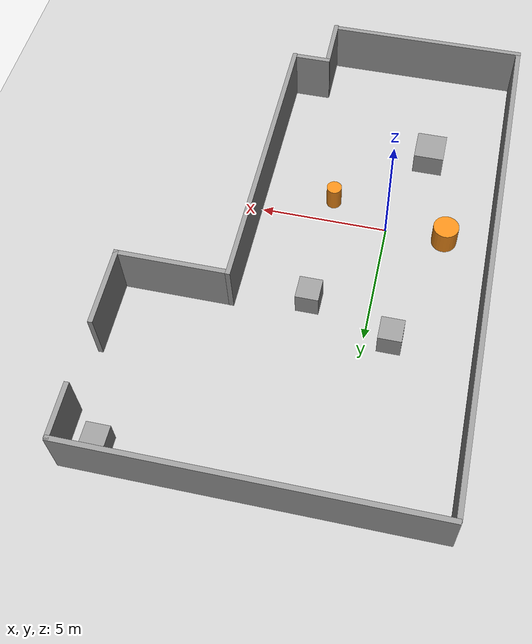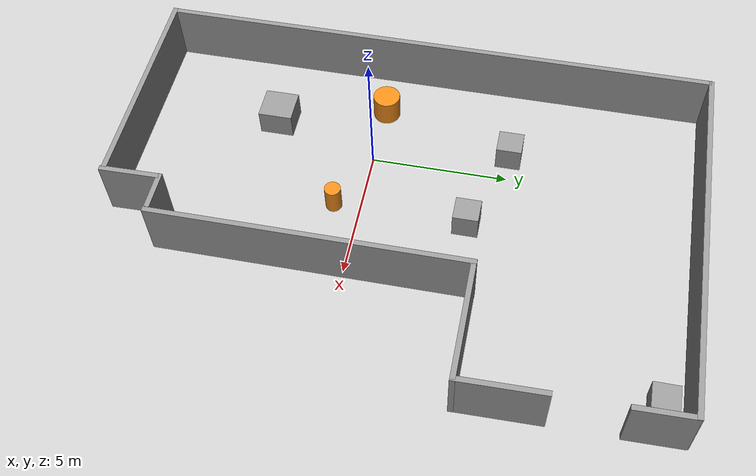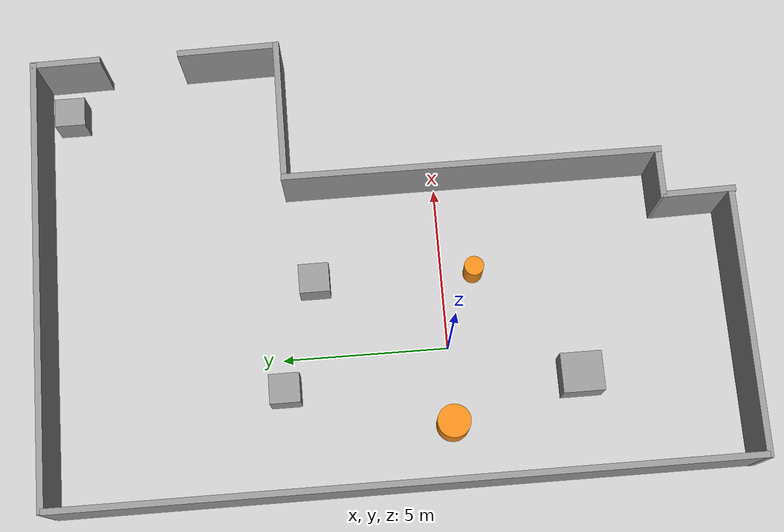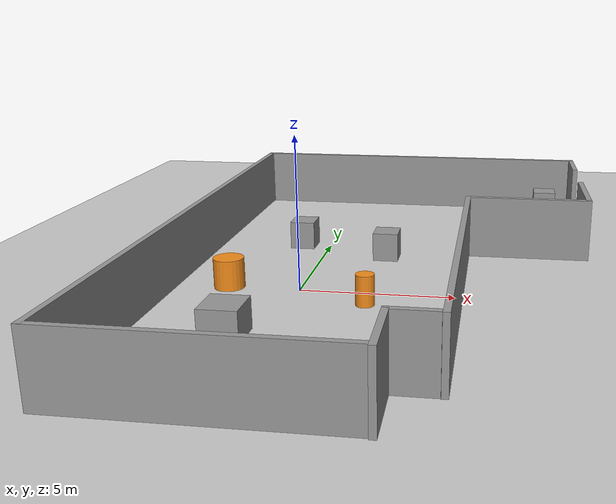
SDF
<sdf version="1.7">
 <world name="default">
  <light name="sun" type="directional">
   <pose>0 0 10 0 -0 0</pose>
   <diffuse>0.8 0.8 0.8 1</diffuse>
   <specular>0.2 0.2 0.2 1</specular>
   <attenuation>
    <range>1000</range>
    <constant>0.9</constant>
    <linear>0.01</linear>
    <quadratic>0.001</quadratic>
   </attenuation>
   <direction>-0.5 0.1 -0.9</direction>
   <spot><inner_angle>0</inner_angle><outer_angle>0</outer_angle><falloff>0</falloff></spot>
  </light>
  <model name="ground_plane">
   <static>1</static>
   <link name="link">
    <collision name="collision">
     <geometry><plane><normal>0 0 1</normal><size>100 100</size></plane></geometry>
     <surface>
      <contact><collide_bitmask>65535</collide_bitmask></contact>
      <friction><ode><mu>100</mu><mu2>50</mu2></ode></friction>
     </surface>
    </collision>
    <visual name="visual">
     <cast_shadows>0</cast_shadows>
     <geometry><plane><normal>0 0 1</normal><size>100 100</size></plane></geometry>
     <material>
      <script><uri>file://media/materials/scripts/gazebo.material</uri><name>Gazebo/Grey</name></script>
     </material>
    </visual>
   </link>
  </model>
  <gravity>0 0 -9.8</gravity>
  <magnetic_field>6e-06 2.3e-05 -4.2e-05</magnetic_field>
  <atmosphere type="adiabatic"/>
  <physics type="ode">
   <max_step_size>0.001</max_step_size>
   <real_time_factor>1</real_time_factor>
   <real_time_update_rate>1000</real_time_update_rate>
  </physics>
  <scene><ambient>0.4 0.4 0.4 1</ambient><background>0.7 0.7 0.7 1</background><shadows>1</shadows></scene>
  <spherical_coordinates>
   <surface_model>EARTH_WGS84</surface_model>
   <latitude_deg>0</latitude_deg>
   <longitude_deg>0</longitude_deg>
   <elevation>0</elevation>
   <heading_deg>0</heading_deg>
  </spherical_coordinates>
  <model name="unit_box">
   <pose>2.29297 3.8756 0.5 0 -0 0</pose>
   <link name="link">
    <inertial>
     <mass>1</mass>
     <inertia>
      <ixx>0.166667</ixx>
      <ixy>0</ixy>
      <ixz>0</ixz>
      <iyy>0.166667</iyy>
      <iyz>0</iyz>
      <izz>0.166667</izz>
     </inertia>
    </inertial>
    <collision name="collision"><geometry><box><size>0.887751 0.920009 1</size></box></geometry></collision>
    <visual name="visual">
     <geometry><box><size>0.887751 0.920009 1</size></box></geometry>
     <material>
      <script><name>Gazebo/Grey</name><uri>file://media/materials/scripts/gazebo.material</uri></script>
     </material>
    </visual>
    <gravity>0</gravity>
    <is_static>1</is_static>
   </link>
   <static>1</static>
  </model>
  <model name="unit_box_clone">
   <pose>-4.13734 1.56638 1.1 0 -0 0</pose>
   <link name="link">
    <inertial>
     <mass>1</mass>
     <inertia>
      <ixx>0.166667</ixx>
      <ixy>0</ixy>
      <ixz>0</ixz>
      <iyy>0.166667</iyy>
      <iyz>0</iyz>
      <izz>0.166667</izz>
     </inertia>
    </inertial>
    <collision name="collision"><geometry><box><size>0.187736 20.6459 2.19069</size></box></geometry></collision>
    <visual name="visual">
     <geometry><box><size>0.187736 20.6459 2.19069</size></box></geometry>
     <material>
      <script><name>Gazebo/Grey</name><uri>file://media/materials/scripts/gazebo.material</uri></script>
     </material>
    </visual>
    <gravity>0</gravity>
    <is_static>1</is_static>
   </link>
   <static>1</static>
  </model>
  <model name="unit_box_clone_0">
   <pose>-0.277493 -8.67132 1.1 0 0 -1.5708</pose>
   <link name="link">
    <inertial>
     <mass>1</mass>
     <inertia>
      <ixx>0.166667</ixx>
      <ixy>0</ixy>
      <ixz>0</ixz>
      <iyy>0.166667</iyy>
      <iyz>0</iyz>
      <izz>0.166667</izz>
     </inertia>
    </inertial>
    <collision name="collision"><geometry><box><size>0.187736 7.92131 2.19069</size></box></geometry></collision>
    <visual name="visual">
     <geometry><box><size>0.187736 7.92131 2.19069</size></box></geometry>
     <material>
      <script><name>Gazebo/Grey</name><uri>file://media/materials/scripts/gazebo.material</uri></script>
     </material>
    </visual>
    <gravity>0</gravity>
    <is_static>1</is_static>
   </link>
   <static>1</static>
  </model>
  <model name="unit_box_clone_1">
   <pose>5.13948 -1.08108 1.1 0.00012 -0 0</pose>
   <link name="link">
    <inertial>
     <mass>1</mass>
     <inertia>
      <ixx>0.166667</ixx>
      <ixy>0</ixy>
      <ixz>0</ixz>
      <iyy>0.166667</iyy>
      <iyz>0</iyz>
      <izz>0.166667</izz>
     </inertia>
    </inertial>
    <collision name="collision"><geometry><box><size>0.187736 11.3827 2.19069</size></box></geometry></collision>
    <visual name="visual">
     <geometry><box><size>0.187736 11.3827 2.19069</size></box></geometry>
     <material>
      <script><name>Gazebo/Grey</name><uri>file://media/materials/scripts/gazebo.material</uri></script>
     </material>
    </visual>
    <gravity>0</gravity>
    <is_static>1</is_static>
   </link>
   <static>1</static>
  </model>
  <model name="unit_box_clone_0_clone">
   <pose>4.33288 -6.65788 1.1 0 -0 1.5707</pose>
   <link name="link">
    <inertial>
     <mass>1</mass>
     <inertia>
      <ixx>0.166667</ixx>
      <ixy>0</ixy>
      <ixz>0</ixz>
      <iyy>0.166667</iyy>
      <iyz>0</iyz>
      <izz>0.166667</izz>
     </inertia>
    </inertial>
    <collision name="collision"><geometry><box><size>0.187736 1.41751 2.19069</size></box></geometry></collision>
    <visual name="visual">
     <geometry><box><size>0.187736 1.41751 2.19069</size></box></geometry>
     <material>
      <script><name>Gazebo/Grey</name><uri>file://media/materials/scripts/gazebo.material</uri></script>
     </material>
    </visual>
    <gravity>0</gravity>
    <is_static>1</is_static>
   </link>
   <static>1</static>
  </model>
  <model name="unit_box_clone_0_clone_clone">
   <pose>2.57167 11.8862 1.1 0 0 -1.5707</pose>
   <link name="link">
    <inertial>
     <mass>1</mass>
     <inertia>
      <ixx>0.166667</ixx>
      <ixy>0</ixy>
      <ixz>0</ixz>
      <iyy>0.166667</iyy>
      <iyz>0</iyz>
      <izz>0.166667</izz>
     </inertia>
    </inertial>
    <collision name="collision"><geometry><box><size>0.187736 13.5655 2.19069</size></box></geometry></collision>
    <visual name="visual">
     <geometry><box><size>0.187736 13.5655 2.19069</size></box></geometry>
     <material>
      <script><name>Gazebo/Grey</name><uri>file://media/materials/scripts/gazebo.material</uri></script>
     </material>
    </visual>
    <gravity>0</gravity>
    <is_static>1</is_static>
   </link>
   <static>1</static>
  </model>
  <model name="unit_box_clone_0_clone_clone_0">
   <pose>7.26676 4.51308 1.1 0 0 -1.57071</pose>
   <link name="link">
    <inertial>
     <mass>1</mass>
     <inertia>
      <ixx>0.166667</ixx>
      <ixy>0</ixy>
      <ixz>0</ixz>
      <iyy>0.166667</iyy>
      <iyz>0</iyz>
      <izz>0.166667</izz>
     </inertia>
    </inertial>
    <collision name="collision"><geometry><box><size>0.187736 4.40981 2.19069</size></box></geometry></collision>
    <visual name="visual">
     <geometry><box><size>0.187736 4.40981 2.19069</size></box></geometry>
     <material>
      <script><name>Gazebo/Grey</name><uri>file://media/materials/scripts/gazebo.material</uri></script>
     </material>
    </visual>
    <gravity>0</gravity>
    <static>1</static>
   </link>
   <static>1</static>
  </model>
  <model name="unit_box_clone_0_clone_clone_1">
   <pose>3.73213 -7.72846 1.1 0 0 -3.12525</pose>
   <link name="link">
    <inertial>
     <mass>1</mass>
     <inertia>
      <ixx>0.166667</ixx>
      <ixy>0</ixy>
      <ixz>0</ixz>
      <iyy>0.166667</iyy>
      <iyz>0</iyz>
      <izz>0.166667</izz>
     </inertia>
    </inertial>
    <collision name="collision"><geometry><box><size>0.187736 2.16903 2.19069</size></box></geometry></collision>
    <visual name="visual">
     <geometry><box><size>0.187736 2.16903 2.19069</size></box></geometry>
     <material>
      <script><name>Gazebo/Grey</name><uri>file://media/materials/scripts/gazebo.material</uri></script>
     </material>
    </visual>
    <gravity>0</gravity>
    <is_static>1</is_static>
   </link>
   <static>1</static>
  </model>
  <model name="unit_box_clone_0_clone_clone_1_clone">
   <pose>9.34998 5.97379 1.1 0 0 -3.12525</pose>
   <link name="link">
    <inertial>
     <mass>1</mass>
     <inertia>
      <ixx>0.166667</ixx>
      <ixy>0</ixy>
      <ixz>0</ixz>
      <iyy>0.166667</iyy>
      <iyz>0</iyz>
      <izz>0.166667</izz>
     </inertia>
    </inertial>
    <collision name="collision"><geometry><box><size>0.187736 3.08581 2.19069</size></box></geometry></collision>
    <visual name="visual">
     <geometry><box><size>0.187736 3.08581 2.19069</size></box></geometry>
     <material>
      <script><name>Gazebo/Grey</name><uri>file://media/materials/scripts/gazebo.material</uri></script>
     </material>
    </visual>
    <gravity>0</gravity>
    <is_static>1</is_static>
   </link>
   <static>1</static>
  </model>
  <model name="unit_box_clone_0_clone_clone_1_clone_clone">
   <pose>9.29604 10.9014 1.1 0 0 -3.12525</pose>
   <link name="link">
    <inertial>
     <mass>1</mass>
     <inertia>
      <ixx>0.166667</ixx>
      <ixy>0</ixy>
      <ixz>0</ixz>
      <iyy>0.166667</iyy>
      <iyz>0</iyz>
      <izz>0.166667</izz>
     </inertia>
    </inertial>
    <collision name="collision"><geometry><box><size>0.187736 2.08837 2.19069</size></box></geometry></collision>
    <visual name="visual">
     <geometry><box><size>0.187736 2.08837 2.19069</size></box></geometry>
     <material>
      <script><name>Gazebo/Grey</name><uri>file://media/materials/scripts/gazebo.material</uri></script>
     </material>
    </visual>
    <gravity>0</gravity>
    <is_static>1</is_static>
   </link>
   <static>1</static>
  </model>
  <model name="unit_cylinder">
   <pose>2.28623 -0.963688 0.5 0 -0 0</pose>
   <link name="link">
    <inertial>
     <mass>1</mass>
     <inertia><ixx>0.145833</ixx><ixy>0</ixy><ixz>0</ixz><iyy>0.145833</iyy><iyz>0</iyz><izz>0.125</izz></inertia>
    </inertial>
    <collision name="collision">
     <geometry><cylinder><radius>0.296823</radius><length>1</length></cylinder></geometry>
    </collision>
    <visual name="visual">
     <geometry><cylinder><radius>0.296823</radius><length>1</length></cylinder></geometry>
     <material>
      <script><name>Gazebo/Orange</name><uri>file://media/materials/scripts/gazebo.material</uri></script>
     </material>
    </visual>
   </link>
  </model>
  <model name="unit_cylinder_0">
   <pose>-2.33415 0.052556 0.499997 3e-06 4e-06 -0</pose>
   <link name="link">
    <inertial>
     <mass>1</mass>
     <inertia><ixx>0.145833</ixx><ixy>0</ixy><ixz>0</ixz><iyy>0.145833</iyy><iyz>0</iyz><izz>0.125</izz></inertia>
    </inertial>
    <collision name="collision">
     <geometry><cylinder><radius>0.5</radius><length>1</length></cylinder></geometry>
    </collision>
    <visual name="visual">
     <geometry><cylinder><radius>0.5</radius><length>1</length></cylinder></geometry>
     <material>
      <script><name>Gazebo/Orange</name><uri>file://media/materials/scripts/gazebo.material</uri></script>
     </material>
    </visual>
   </link>
  </model>
  <model name="unit_box_clone_2">
   <pose>-1.17791 -3.85731 0.5 0 -0 0</pose>
   <link name="link">
    <inertial>
     <mass>1</mass>
     <inertia>
      <ixx>0.166667</ixx>
      <ixy>0</ixy>
      <ixz>0</ixz>
      <iyy>0.166667</iyy>
      <iyz>0</iyz>
      <izz>0.166667</izz>
     </inertia>
    </inertial>
    <collision name="collision"><geometry><box><size>1.19078 1.24149 1</size></box></geometry></collision>
    <visual name="visual">
     <geometry><box><size>1.19078 1.24149 1</size></box></geometry>
     <material>
      <script><name>Gazebo/Grey</name><uri>file://media/materials/scripts/gazebo.material</uri></script>
     </material>
    </visual>
    <gravity>0</gravity>
    <is_static>1</is_static>
   </link>
   <static>1</static>
  </model>
  <model name="unit_box_clone_3">
   <pose>8.16562 11.0726 0.5 0 -0 0</pose>
   <link name="link">
    <inertial>
     <mass>1</mass>
     <inertia>
      <ixx>0.166667</ixx>
      <ixy>0</ixy>
      <ixz>0</ixz>
      <iyy>0.166667</iyy>
      <iyz>0</iyz>
      <izz>0.166667</izz>
     </inertia>
    </inertial>
    <collision name="collision"><geometry><box><size>0.887751 0.920009 1</size></box></geometry></collision>
    <visual name="visual">
     <geometry><box><size>0.887751 0.920009 1</size></box></geometry>
     <material>
      <script><name>Gazebo/Grey</name><uri>file://media/materials/scripts/gazebo.material</uri></script>
     </material>
    </visual>
    <gravity>0</gravity>
    <is_static>1</is_static>
   </link>
   <static>1</static>
  </model>
  <model name="unit_box_clone_4">
   <pose>-0.980607 4.95873 0.5 0 -0 0</pose>
   <link name="link">
    <inertial>
     <mass>1</mass>
     <inertia>
      <ixx>0.166667</ixx>
      <ixy>0</ixy>
      <ixz>0</ixz>
      <iyy>0.166667</iyy>
      <iyz>0</iyz>
      <izz>0.166667</izz>
     </inertia>
    </inertial>
    <collision name="collision"><geometry><box><size>0.887751 0.920009 1</size></box></geometry></collision>
    <visual name="visual">
     <geometry><box><size>0.887751 0.920009 1</size></box></geometry>
     <material>
      <script><name>Gazebo/Grey</name><uri>file://media/materials/scripts/gazebo.material</uri></script>
     </material>
    </visual>
    <gravity>0</gravity>
    <is_static>1</is_static>
   </link>
   <static>1</static>
  </model>
 </world>
</sdf>
